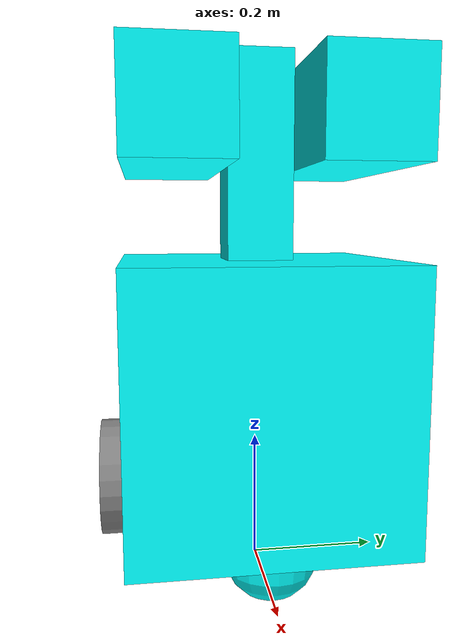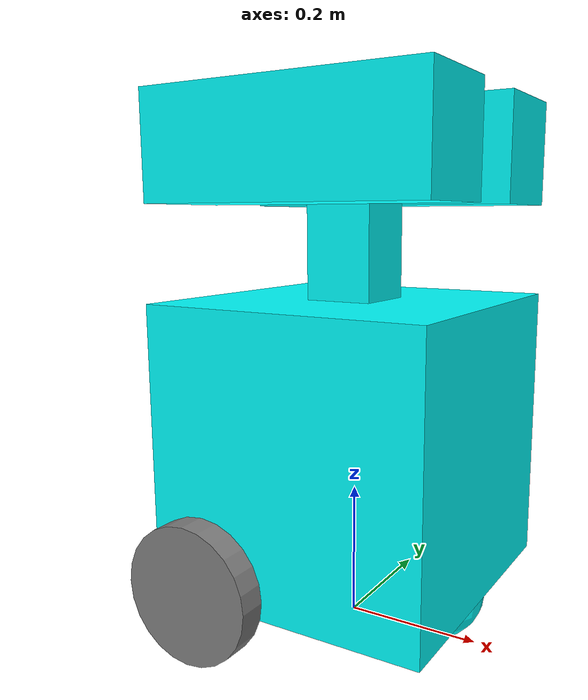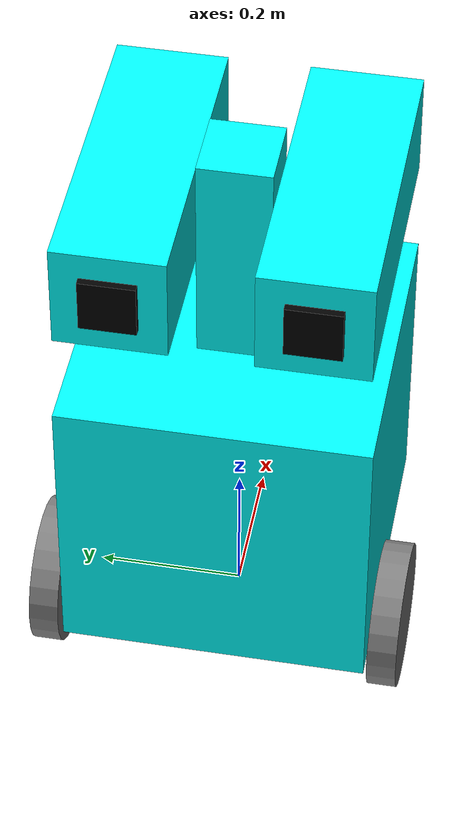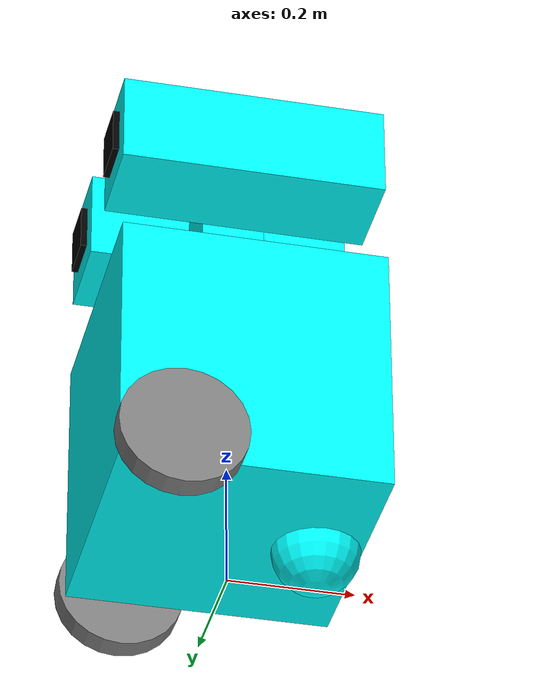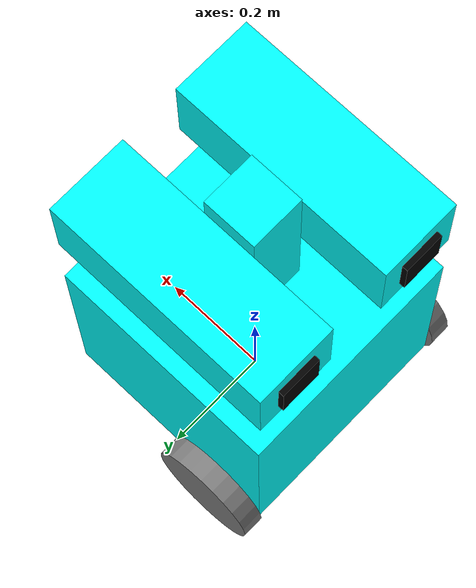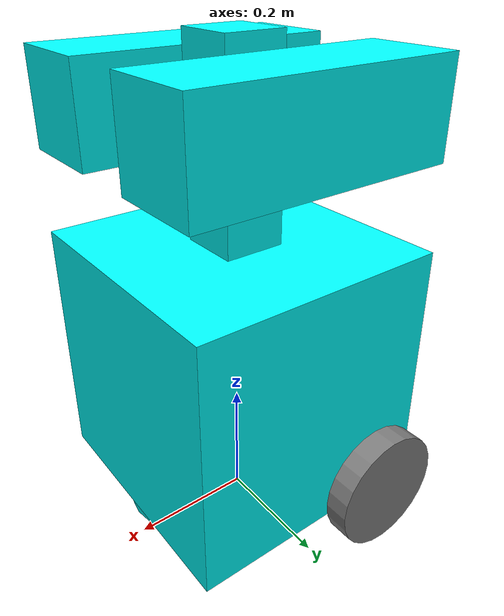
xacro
<?xml version="1.0"?>
<robot name="sam_bot" xmlns:xacro="http://ros.org/wiki/xacro">

  <!-- Define robot constants -->
  <xacro:property name="base_width" value="0.42"/>
  <xacro:property name="base_length" value="0.42"/>
  <xacro:property name="base_height" value="0.42"/>

  <xacro:property name="eyes_width" value="0.15"/>
  <xacro:property name="eyes_length" value="0.42"/>
  <xacro:property name="eyes_height" value="0.15"/>

  <xacro:property name="neck_width" value="0.1"/>
  <xacro:property name="neck_length" value="0.1"/>
  <xacro:property name="neck_height" value="0.4"/>

  <xacro:property name="wheel_radius" value="0.10"/>
  <xacro:property name="wheel_width" value="0.04"/>
  <xacro:property name="wheel_ygap" value="0.025"/>
  <xacro:property name="wheel_zoff" value="0.18"/>
  <xacro:property name="wheel_xoff" value="0.12"/>

  <xacro:property name="caster_xoff" value="0.14"/>

  <!-- Define inertial property macros -->
  <xacro:macro name="box_inertia" params="m w h d">
    <inertial>
      <origin xyz="0 0 0" rpy="0 0 0"/>
      <mass value="${m}"/>
      <inertia ixx="${(m/12) * (h*h + d*d)}" ixy="0.0" ixz="0.0" iyy="${(m/12) * (w*w + d*d)}" iyz="0.0" izz="${(m/12) * (w*w + h*h)}"/>
    </inertial>
  </xacro:macro>

  <xacro:macro name="cylinder_inertia" params="m r h">
    <inertial>
      <origin xyz="0 0 0" rpy="0 0 0"/>
      <mass value="${m}"/>
      <inertia ixx="${(m/12) * (3*r*r + h*h)}" ixy="0.0" ixz="0.0" iyy="${(m/12) * (3*r*r + h*h)}" iyz="0.0" izz="${(m/2) * r*r}"/>
    </inertial>
  </xacro:macro>

  <xacro:macro name="sphere_inertia" params="m r">
    <inertial>
      <mass value="${m}"/>
      <inertia ixx="${(2/5) * m * r*r}" ixy="0.0" ixz="0.0" iyy="${(2/5) * m * r*r}" iyz="0.0" izz="${(2/5) * m * r*r}"/>
    </inertial>
  </xacro:macro>

  <!-- Robot Footprint -->
  <link name="base_footprint">
    <inertial>
      <mass value="0.001"/>
      <inertia ixx="0.001" ixy="0.0" ixz="0.0" iyy="0.001" iyz="0.0" izz="0.001"/>
    </inertial>
  </link>

  <!-- Robot Base -->
  <link name="base_link">
    <visual>
      <geometry>
        <box size="${base_length} ${base_width} ${base_height}"/>
      </geometry>
      <material name="Cyan">
        <color rgba="0 1.0 1.0 1.0"/>
      </material>
    </visual>
    <collision>
      <geometry>
        <box size="${base_length} ${base_width} ${base_height}"/>
      </geometry>
    </collision>
    <xacro:box_inertia m="15" w="${base_width}" h="${base_height}" d="${base_length}"/>
  </link>

  <joint name="base_joint" type="fixed">
    <parent link="base_footprint"/>
    <child link="base_link"/>
    <origin xyz="0.0 0.0 ${(wheel_radius+wheel_zoff)}" rpy="0 0 0"/>
  </joint>

  <!-- Robot Neck -->
  <link name="neck_link">
    <visual>
      <geometry>
        <box size="${neck_length} ${neck_width} ${neck_height}"/>
      </geometry>
      <material name="Cyan">
        <color rgba="0 1.0 1.0 1.0"/>
      </material>
    </visual>
    <xacro:box_inertia m="15" w="${neck_width}" h="${neck_height}" d="${neck_length}"/>
  </link>

  <!-- Robot Eyes Left -->
  <link name="eyes_left_link">
    <visual>
      <geometry>
        <box size="${eyes_length} ${eyes_width} ${eyes_height}"/>
      </geometry>
      <material name="Cyan">
        <color rgba="0 1.0 1.0 1.0"/>
      </material>
    </visual>
    <xacro:box_inertia m="15" w="${eyes_width}" h="${eyes_height}" d="${eyes_length}"/>
  </link>

    <!-- Robot Eyes Right -->
  <link name="eyes_right_link">
    <visual>
      <geometry>
        <box size="${eyes_length} ${eyes_width} ${eyes_height}"/>
      </geometry>
      <material name="Cyan">
        <color rgba="0 1.0 1.0 1.0"/>
      </material>
    </visual>
    <xacro:box_inertia m="15" w="${eyes_width}" h="${eyes_height}" d="${eyes_length}"/>
  </link>

  <!-- neck Footprint -->
   <joint name="neck_joint" type="fixed">
    <parent link="base_link"/>
    <child link="neck_link"/>
    <origin xyz="0.0 0.0 ${base_width-0.1}" rpy="0 0 0"/>
  </joint>

  <!-- Eyes Right Footprint -->
   <joint name="eyes_left_joint" type="fixed">
    <parent link="neck_link"/>
    <child link="eyes_left_link"/>
    <origin xyz="0.0 -0.13 0.1" rpy="0 0 0"/>
  </joint>

  <!-- Eyes Right Footprint -->
   <joint name="eyes_right_joint" type="fixed">
    <parent link="neck_link"/>
    <child link="eyes_right_link"/>
    <origin xyz="0.0 0.13 0.1" rpy="0 0 0"/>
  </joint>

  <!-- Wheels -->
  <xacro:macro name="wheel" params="prefix x_reflect y_reflect">
    <link name="${prefix}_link">
      <visual>
        <origin xyz="0 0 0" rpy="${pi/2} 0 0"/>
        <geometry>
          <cylinder radius="${wheel_radius}" length="${wheel_width}"/>
        </geometry>
        <material name="Gray">
          <color rgba="0.5 0.5 0.5 1.0"/>
        </material>
      </visual>
      <collision>
        <origin xyz="0 0 0" rpy="${pi/2} 0 0"/>
        <geometry>
          <cylinder radius="${wheel_radius}" length="${wheel_width}"/>
        </geometry>
      </collision>
      <xacro:cylinder_inertia m="0.5" r="${wheel_radius}" h="${wheel_width}"/>
    </link>

    <joint name="${prefix}_joint" type="continuous">
      <parent link="base_link"/>
      <child link="${prefix}_link"/>
      <origin xyz="${x_reflect*wheel_xoff} ${y_reflect*(base_width/2+wheel_ygap)} ${-wheel_zoff}" rpy="0 0 0"/>
      <axis xyz="0 1 0"/>
    </joint>
  </xacro:macro>

  <xacro:wheel prefix="drivewhl_l" x_reflect="-1" y_reflect="1"/>
  <xacro:wheel prefix="drivewhl_r" x_reflect="-1" y_reflect="-1"/>

  <!-- Caster Wheel -->
  <link name="front_caster">
    <visual>
      <geometry>
        <sphere radius="${(wheel_radius+wheel_zoff-(base_height/2))}"/>
      </geometry>
      <material name="Cyan">
        <color rgba="0 1.0 1.0 1.0"/>
      </material>
    </visual>
    <collision>
      <geometry>
        <sphere radius="${(wheel_radius+wheel_zoff-(base_height/2))}"/>
      </geometry>
    </collision>
    <xacro:sphere_inertia m="0.5" r="${(wheel_radius+wheel_zoff-(base_height/2))}"/>
  </link>

  <joint name="caster_joint" type="fixed">
    <parent link="base_link"/>
    <child link="front_caster"/>
    <origin xyz="${caster_xoff} 0.0 ${-(base_height/2)}" rpy="0 0 0"/>
  </joint>

<!-- ZRACHKI -->

 <!-- Robot ZRACHKI Eyes Left -->
  <link name="zrachki_eyes_left_link">
    <visual>
      <geometry>
        <box size="${eyes_length} ${eyes_width/2} ${eyes_height/2}"/>
      </geometry>
      <material name="Cyan">
        <color rgba="0 0.0 0.0 0.0"/>
      </material>
    </visual>
    <xacro:box_inertia m="15" w="${eyes_width/2}" h="${eyes_height/2}" d="${eyes_length}"/>
  </link>

    <!-- Robot ZRACHKI Eyes Right -->
  <link name="zrachki_eyes_right_link">
    <visual>
      <geometry>
        <box size="${eyes_length} ${eyes_width/2} ${eyes_height/2}"/>
      </geometry>
      <material name="Cyan">
        <color rgba="0 0.0 0.0 0.0"/>
      </material>
    </visual>
    <xacro:box_inertia m="15" w="${eyes_width/2}" h="${eyes_height/2}" d="${eyes_length}"/>
  </link>

    <!-- EZRACHKI yes Right Footprint -->
   <joint name="zrachki_eyes_left_joint" type="fixed">
    <parent link="eyes_left_link"/>
    <child link="zrachki_eyes_left_link"/>
    <origin xyz="-0.01 0.0 0.0" rpy="0 0 0"/>
  </joint>

  <!-- ZRACHKI Eyes Right Footprint -->
   <joint name="zrachki_eyes_right_joint" type="fixed">
    <parent link="eyes_right_link"/>
    <child link="zrachki_eyes_right_link"/>
    <origin xyz="-0.01 0.0 0.0" rpy="0 0 0"/>
  </joint>

  <!-- Gazebo Plugins -->
  <gazebo>
    <plugin filename="libgz-sim-diff-drive-system.so" name="gz::sim::systems::DiffDrive">
      <left_joint>drivewhl_l_joint</left_joint>
      <right_joint>drivewhl_r_joint</right_joint>
      <wheel_separation>${base_width + 2*wheel_ygap}</wheel_separation>
      <wheel_radius>${wheel_radius}</wheel_radius>
      <odom_publish_frequency>30</odom_publish_frequency>
      <topic>/model/sam_bot/cmd_vel</topic>
      <odom_topic>/model/sam_bot/odometry</odom_topic>
    </plugin>
  </gazebo>

  <!-- Joint State Publisher Plugin -->
  <gazebo>
    <plugin filename="libgz-sim-joint-state-publisher-system.so" name="gz::sim::systems::JointStatePublisher">
      <joint_name>drivewhl_l_joint</joint_name>
      <joint_name>drivewhl_r_joint</joint_name>
    </plugin>
  </gazebo>

</robot>
